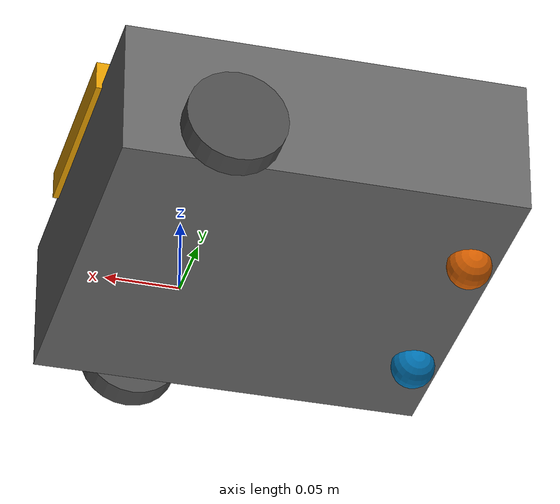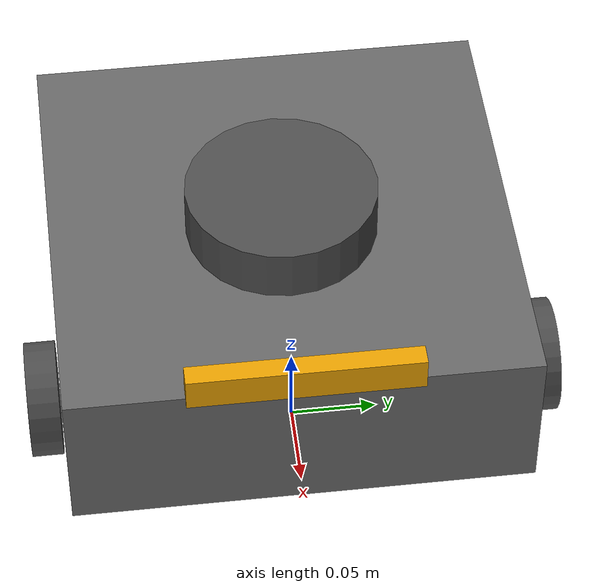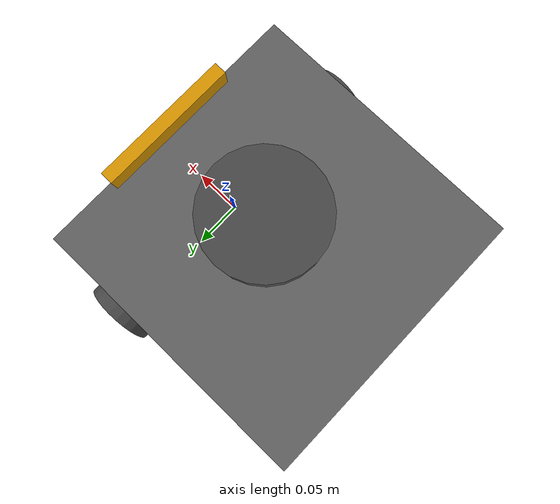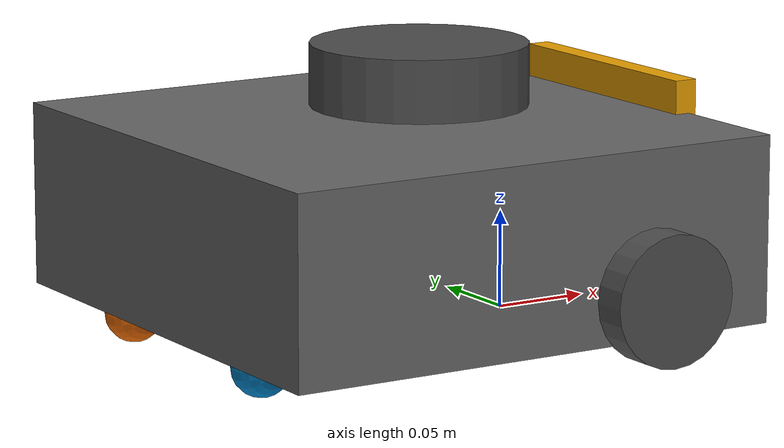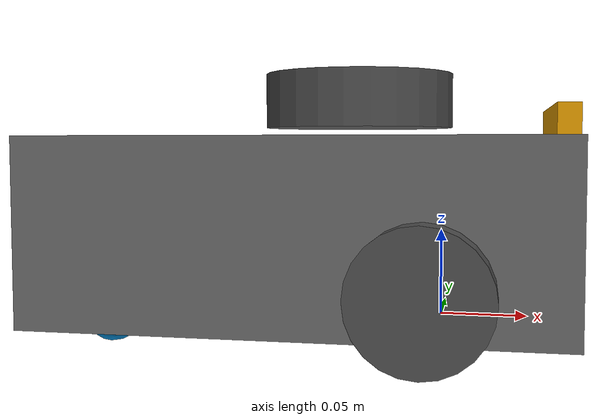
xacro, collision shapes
<?xml version="1.0" ?>
<robot name="turtlebot3_waffle" xmlns:xacro="http://ros.org/wiki/xacro">

  <xacro:include filename="$(find robot_description)/urdf/materials.xacro" />

  <xacro:include filename="$(find robot_description)/urdf/waffle_base.xacro" />

  <xacro:include filename="$(find robot_description)/urdf/waffle_sensors.xacro" />

  <xacro:include filename="$(find robot_description)/urdf/waffle_ros2_controller.xacro" />

</robot>

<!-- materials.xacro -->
<robot xmlns:xacro="http://ros.org/wiki/xacro">

  <material name="black">
      <color rgba="0.0 0.0 0.0 1.0"/>
  </material>

  <material name="dark">
    <color rgba="0.3 0.3 0.3 1.0"/>
  </material>

  <material name="light_black">
    <color rgba="0.4 0.4 0.4 1.0"/>
  </material>

  <material name="blue">
    <color rgba="0.0 0.0 0.8 1.0"/>
  </material>

  <material name="green">
    <color rgba="0.0 0.8 0.0 1.0"/>
  </material>

  <material name="grey">
    <color rgba="0.5 0.5 0.5 1.0"/>
  </material>

  <material name="orange">
    <color rgba="1.0 0.4235 0.0392 1.0"/>
  </material>

  <material name="brown">
    <color rgba="0.8706 0.8118 0.7647 1.0"/>
  </material>

  <material name="red">
    <color rgba="0.8 0.0 0.0 1.0"/>
  </material>

  <material name="white">
    <color rgba="1.0 1.0 1.0 1.0"/>
  </material>

</robot>

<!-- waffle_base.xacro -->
<robot xmlns:xacro="http://ros.org/wiki/xacro">

  <xacro:arg name="namespace" default=""/>
  <xacro:property name="namespace" value="$(arg namespace)"/>

  <gazebo reference="${namespace}base_link">
    <material>Gazebo/DarkGrey</material>
  </gazebo>

  <link name="${namespace}base_footprint"/>

  <joint name="${namespace}base_joint" type="fixed">
    <parent link="${namespace}base_footprint"/>
    <child link="${namespace}base_link" />
    <origin xyz="0 0 0.010" rpy="0 0 0"/>
  </joint>

  <link name="${namespace}base_link">
    <visual>
      <origin xyz="-0.064 0 0.0" rpy="0 0 0"/>
      <geometry>
        <mesh filename="package://turtlebot3_description/meshes/bases/waffle_base.stl" scale="0.001 0.001 0.001"/>
      </geometry>
      <material name="light_black"/>
    </visual>
    <collision>
      <origin xyz="-0.064 0 0.047" rpy="0 0 0"/>
      <geometry>
        <box size="0.266 0.266 0.094"/>
      </geometry>
    </collision>
    <inertial>
      <origin xyz="0 0 0" rpy="0 0 0"/>
      <mass value="1.3729096e+00"/>
      <inertia ixx="8.7002718e-03" ixy="-4.7576583e-05" ixz="1.1160499e-04"
               iyy="8.6195418e-03" iyz="-3.5422299e-06"
               izz="1.4612727e-02" />
    </inertial>
  </link>

  <joint name="${namespace}wheel_left_joint" type="continuous">
    <parent link="${namespace}base_link"/>
    <child link="${namespace}wheel_left_link"/>
    <origin xyz="0.0 0.144 0.023" rpy="-1.57 0 0"/>
    <axis xyz="0 0 1"/>
    <dynamics damping="0.0" friction="0.0"/>
  </joint>

  <link name="${namespace}wheel_left_link">
    <visual>
      <origin xyz="0 0 0" rpy="1.57 0 0"/>
      <geometry>
        <mesh filename="package://turtlebot3_description/meshes/wheels/left_tire.stl" scale="0.001 0.001 0.001"/>
      </geometry>
      <material name="dark"/>
    </visual>
    <collision>
      <origin xyz="0 0 0" rpy="0 0 0"/>
      <geometry>
        <cylinder length="0.018" radius="0.033"/>
      </geometry>
    </collision>
    <inertial>
      <origin xyz="0 0 0" />
      <mass value="2.8498940e-02" />
      <inertia ixx="1.1175580e-05" ixy="-4.2369783e-11" ixz="-5.9381719e-09"
               iyy="1.1192413e-05" iyz="-1.4400107e-11"
               izz="2.0712558e-05" />
      </inertial>
  </link>

  <joint name="${namespace}wheel_right_joint" type="continuous">
    <parent link="${namespace}base_link"/>
    <child link="${namespace}wheel_right_link"/>
    <origin xyz="0.0 -0.144 0.023" rpy="-1.57 0 0"/>
    <axis xyz="0 0 1"/>
    <dynamics damping="0.0" friction="0.0"/>
  </joint>

  <link name="${namespace}wheel_right_link">
    <visual>
      <origin xyz="0 0 0" rpy="1.57 0 0"/>
      <geometry>
        <mesh filename="package://turtlebot3_description/meshes/wheels/right_tire.stl" scale="0.001 0.001 0.001"/>
      </geometry>
      <material name="dark"/>
    </visual>
    <collision>
      <origin xyz="0 0 0" rpy="0 0 0"/>
      <geometry>
        <cylinder length="0.018" radius="0.033"/>
      </geometry>
    </collision>
    <inertial>
      <origin xyz="0 0 0" />
      <mass value="2.8498940e-02" />
      <inertia ixx="1.1175580e-05" ixy="-4.2369783e-11" ixz="-5.9381719e-09"
               iyy="1.1192413e-05" iyz="-1.4400107e-11"
               izz="2.0712558e-05" />
      </inertial>
  </link>

  <joint name="${namespace}caster_back_right_joint" type="fixed">
    <parent link="${namespace}base_link"/>
    <child link="${namespace}caster_back_right_link"/>
    <origin xyz="-0.177 -0.064 -0.004" rpy="-1.57 0 0"/>
  </joint>

  <link name="${namespace}caster_back_right_link">
    <collision>
      <origin xyz="0 0 0" rpy="0 0 0"/>
      <geometry>
        <sphere radius="0.015"/>
      </geometry>
    </collision>
    <inertial>
      <origin xyz="0 0 0" />
      <mass value="0.005" />
      <inertia ixx="0.001" ixy="0.0" ixz="0.0" iyy="0.001" iyz="0.0" izz="0.001" />
    </inertial>
  </link>

  <joint name="${namespace}caster_back_left_joint" type="fixed">
    <parent link="${namespace}base_link"/>
    <child link="${namespace}caster_back_left_link"/>
    <origin xyz="-0.177 0.064 -0.004" rpy="-1.57 0 0"/>
  </joint>

  <link name="${namespace}caster_back_left_link">
    <collision>
       <origin xyz="0 0 0" rpy="0 0 0"/>
      <geometry>
        <sphere radius="0.015"/>
      </geometry>
    </collision>
    <inertial>
      <origin xyz="0 0 0" />
      <mass value="0.005" />
      <inertia ixx="0.001" ixy="0.0" ixz="0.0" iyy="0.001" iyz="0.0" izz="0.001" />
    </inertial>
  </link>

  <gazebo reference="${namespace}wheel_left_link">
    <mu1>100.0</mu1>
    <mu2>100.0</mu2>
    <kp>1000000.0</kp>
    <kd>1.0</kd>
    <minDepth>0.001</minDepth>
    <maxVel>0.1</maxVel>
    <fdir1>1 0 0</fdir1>
  </gazebo>

  <gazebo reference="${namespace}wheel_right_link">
    <mu1>100.0</mu1>
    <mu2>100.0</mu2>
    <kp>1000000.0</kp>
    <kd>1.0</kd>
    <minDepth>0.001</minDepth>
    <maxVel>0.1</maxVel>
    <fdir1>1 0 0</fdir1>
  </gazebo>

  <gazebo reference="${namespace}caster_back_right_link">
    <mu1>0.0</mu1>
    <mu2>0.0</mu2>
    <kp>1000000.0</kp>
    <kd>100.0</kd>
    <minDepth>0.001</minDepth>
    <maxVel>1.0</maxVel>
  </gazebo>

  <gazebo reference="${namespace}caster_back_left_link">
    <mu1>0.0</mu1>
    <mu2>0.0</mu2>
    <kp>1000000.0</kp>
    <kd>100.0</kd>
    <minDepth>0.001</minDepth>
    <maxVel>1.0</maxVel>
  </gazebo>

</robot>

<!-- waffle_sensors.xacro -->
<robot xmlns:xacro="http://ros.org/wiki/xacro">

  <joint name="${namespace}imu_joint" type="fixed">
    <parent link="${namespace}base_link"/>
    <child link="${namespace}imu_link"/>
    <origin xyz="0.0 0 0.068" rpy="0 0 0"/>
  </joint>

  <link name="${namespace}imu_link"/>

  <gazebo reference="${namespace}imu_link">
    <sensor name="tb3_imu" type="imu">
      <always_on>true</always_on>
      <update_rate>50</update_rate>
      <visualize>true</visualize>
      <topic>imu</topic>

      <frame_id>${namespace}imu_link</frame_id>
      <ign_frame_id>${namespace}imu_link</ign_frame_id>

      <imu>
        <angular_velocity>
          <x><noise type="gaussian"><mean>0.0</mean><stddev>2e-4</stddev></noise></x>
          <y><noise type="gaussian"><mean>0.0</mean><stddev>2e-4</stddev></noise></y>
          <z><noise type="gaussian"><mean>0.0</mean><stddev>2e-4</stddev></noise></z>
        </angular_velocity>
        <linear_acceleration>
          <x><noise type="gaussian"><mean>0.0</mean><stddev>1.7e-2</stddev></noise></x>
          <y><noise type="gaussian"><mean>0.0</mean><stddev>1.7e-2</stddev></noise></y>
          <z><noise type="gaussian"><mean>0.0</mean><stddev>1.7e-2</stddev></noise></z>
        </linear_acceleration>
      </imu>
    </sensor>
  </gazebo>

  <joint name="${namespace}scan_joint" type="fixed">
    <parent link="${namespace}base_link"/>
    <child link="${namespace}base_scan"/>
    <origin xyz="-0.064 0 0.122" rpy="0 0 0"/>
  </joint>

  <link name="${namespace}base_scan">
    <visual>
      <origin xyz="0 0 0" rpy="0 0 0"/>
      <geometry>
        <mesh filename="package://turtlebot3_description/meshes/sensors/lds.stl" scale="0.001 0.001 0.001"/>
      </geometry>
      <material name="dark"/>
    </visual>
    <collision>
      <origin xyz="0.015 0 -0.0065" rpy="0 0 0"/>
      <geometry>
        <cylinder length="0.0315" radius="0.055"/>
      </geometry>
    </collision>
    <inertial>
      <mass value="0.114" />
      <origin xyz="0 0 0" />
      <inertia ixx="0.001" ixy="0.0" ixz="0.0" iyy="0.001" iyz="0.0" izz="0.001" />
    </inertial>
  </link>

  <gazebo reference="${namespace}base_scan">
    <sensor name="hls_lfcd_lds" type="gpu_lidar">
      <topic>scan</topic>
      <always_on>true</always_on>
      <visualize>true</visualize>
      <update_rate>5</update_rate>

      <frame_id>${namespace}base_scan</frame_id>
      <ign_frame_id>${namespace}base_scan</ign_frame_id>

      <ray>
        <scan>
          <horizontal>
            <samples>360</samples>
            <resolution>1</resolution>
            <min_angle>0.0</min_angle>
            <max_angle>6.28319</max_angle>
          </horizontal>
        </scan>
        <range>
          <min>0.120</min>
          <max>3.5</max>
          <resolution>0.015</resolution>
        </range>
        <noise>
          <type>gaussian</type>
          <mean>0.0</mean>
          <stddev>0.01</stddev>
        </noise>
      </ray>
    </sensor>
  </gazebo>

  <joint name="${namespace}camera_joint" type="fixed">
    <origin xyz="0.064 -0.065 0.094" rpy="0 0 0"/>
    <parent link="${namespace}base_link"/>
    <child link="${namespace}camera_link"/>
  </joint>

  <link name="${namespace}camera_link">
    <visual>
     <origin xyz="0 0 0" rpy="1.57 0 1.57"/>
      <geometry>
       <mesh filename="package://turtlebot3_description/meshes/sensors/r200.dae" />
      </geometry>
    </visual>
    <collision>
      <origin xyz="0.003 0.065 0.007" rpy="0 0 0"/>
      <geometry>
        <box size="0.012 0.132 0.020"/>
      </geometry>
    </collision>
  </link>

  <joint name="${namespace}camera_rgb_joint" type="fixed">
    <origin xyz="0.005 0.018 0.013" rpy="0 0 0"/>
    <parent link="${namespace}camera_link"/>
    <child link="${namespace}camera_rgb_frame"/>
  </joint>
  <link name="${namespace}camera_rgb_frame"/>

  <joint name="${namespace}camera_rgb_optical_joint" type="fixed">
    <origin xyz="0 0 0" rpy="-1.57 0 -1.57"/>
    <parent link="${namespace}camera_rgb_frame"/>
    <child link="${namespace}camera_rgb_optical_frame"/>
  </joint>
  <link name="${namespace}camera_rgb_optical_frame"/>

  <joint name="${namespace}camera_depth_joint" type="fixed">
    <origin xyz="0.005 0.028 0.013" rpy="0 0 0"/>
    <parent link="${namespace}camera_link"/>
    <child link="${namespace}camera_depth_frame"/>
  </joint>
  <link name="${namespace}camera_depth_frame"/>

  <joint name="${namespace}camera_depth_optical_joint" type="fixed">
    <origin xyz="0 0 0" rpy="-1.57 0 -1.57"/>
    <parent link="${namespace}camera_depth_frame"/>
    <child link="${namespace}camera_depth_optical_frame"/>
  </joint>
  <link name="${namespace}camera_depth_optical_frame"/>

  <gazebo reference="${namespace}camera_rgb_frame">
    <sensor name="camera" type="camera">
      <topic>camera/image</topic>
      <always_on>true</always_on>
      <visualize>true</visualize>
      <update_rate>30</update_rate>

      <frame_id>${namespace}camera_rgb_optical_frame</frame_id>
      <ign_frame_id>${namespace}camera_rgb_optical_frame</ign_frame_id>

      <camera name="intel_realsense_r200">
        <horizontal_fov>1.02974</horizontal_fov>
        <image>
          <width>1920</width>
          <height>1080</height>
          <format>R8G8B8</format>
        </image>
        <clip>
          <near>0.02</near>
          <far>300</far>
        </clip>
        <noise>
          <type>gaussian</type>
          <mean>0.0</mean>
          <stddev>0.007</stddev>
        </noise>
      </camera>
    </sensor>
  </gazebo>

  <gazebo reference="${namespace}camera_depth_frame">
    <sensor name="camera_depth" type="depth_camera">
      <topic>camera/depth_image</topic> <always_on>true</always_on>
      <visualize>true</visualize>
      <update_rate>30</update_rate>

      <frame_id>${namespace}camera_depth_optical_frame</frame_id>
      <ign_frame_id>${namespace}camera_depth_optical_frame</ign_frame_id>

      <camera name="intel_realsense_r200_depth">
        <horizontal_fov>1.02974</horizontal_fov>
        <image>
          <width>640</width>   <height>480</height>
          <format>R_FLOAT32</format> </image>
        <clip>
          <near>0.1</near>
          <far>10.0</far> </clip>
      </camera>
    </sensor>
  </gazebo>

</robot>
